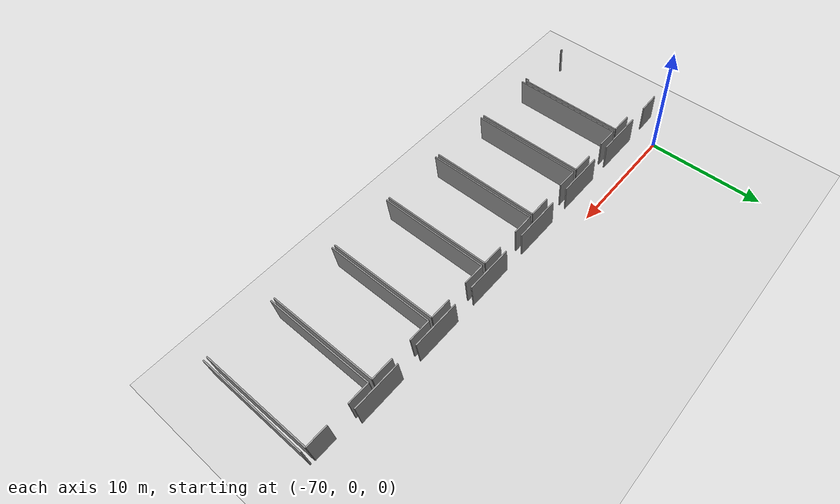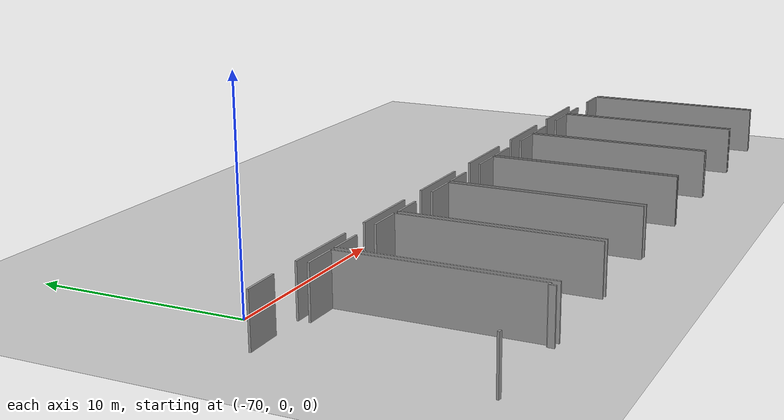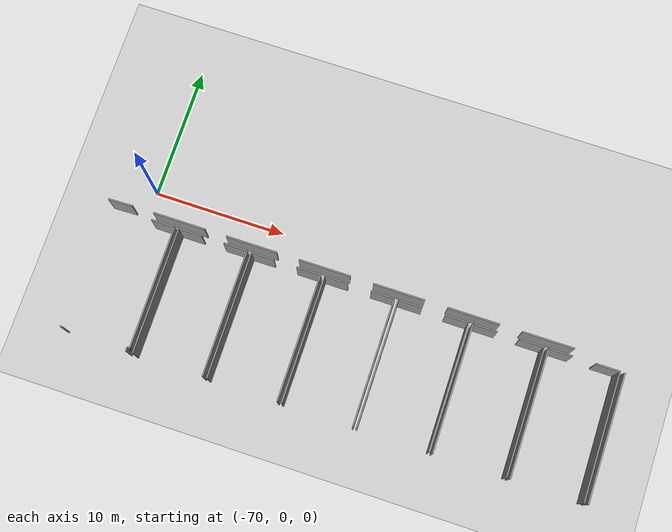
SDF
<sdf version="1.6">
 <world name="default">
  <model name="ground_plane">
   <static>1</static>
   <link name="link">
    <collision name="collision">
     <geometry><plane><normal>0 0 1</normal><size>100 100</size></plane></geometry>
     <surface><friction><ode><mu>100</mu><mu2>50</mu2></ode></friction></surface>
    </collision>
    <visual name="visual">
     <cast_shadows>0</cast_shadows>
     <geometry><plane><normal>0 0 1</normal><size>100 100</size></plane></geometry>
     <material>
      <script><uri>file://media/materials/scripts/gazebo.material</uri><name>Gazebo/Grey</name></script>
     </material>
    </visual>
   </link>
  </model>
  <model name="0510045906_A_40_1_104">
   <static>1</static>
   <link name="Wall_23">
    <collision name="Wall_23_Collision">
     <geometry><box><size>3.86427551182 0.1 2.5</size></box></geometry>
     <pose>1.93213775591 0 1.25 0 0 0</pose>
    </collision>
    <visual name="Wall_23_Visual">
     <pose>1.93213775591 0 1.25 0 0 0</pose>
     <geometry><box><size>3.86427551182 0.1 2.5</size></box></geometry>
     <material>
      <script><uri>file://media/materials/scripts/gazebo.material</uri><name>Gazebo/Grey</name></script>
      <ambient>1 1 1 1</ambient>
     </material>
    </visual>
    <pose>46.4005078559 -14.1445484844 0 0 0 3.14159265359</pose>
   </link>
   <link name="Wall_24">
    <collision name="Wall_24_Collision">
     <geometry><box><size>3.91252182193 0.1 2.5</size></box></geometry>
     <pose>1.95626091097 0 1.25 0 0 0</pose>
    </collision>
    <visual name="Wall_24_Visual">
     <pose>1.95626091097 0 1.25 0 0 0</pose>
     <geometry><box><size>3.91252182193 0.1 2.5</size></box></geometry>
     <material>
      <script><uri>file://media/materials/scripts/gazebo.material</uri><name>Gazebo/Grey</name></script>
      <ambient>1 1 1 1</ambient>
     </material>
    </visual>
    <pose>40.8564989684 -14.1445484844 0 0 0 3.14159265359</pose>
   </link>
   <link name="Wall_25">
    <collision name="Wall_25_Collision">
     <geometry><box><size>3.88306617997 0.1 2.5</size></box></geometry>
     <pose>1.94153308999 0 1.25 0 0 0</pose>
    </collision>
    <visual name="Wall_25_Visual">
     <pose>1.94153308999 0 1.25 0 0 0</pose>
     <geometry><box><size>3.88306617997 0.1 2.5</size></box></geometry>
     <material>
      <script><uri>file://media/materials/scripts/gazebo.material</uri><name>Gazebo/Grey</name></script>
      <ambient>1 1 1 1</ambient>
     </material>
    </visual>
    <pose>35.2469766704 -14.1445484844 0 0 0 3.14159265359</pose>
   </link>
   <link name="Wall_26">
    <collision name="Wall_26_Collision">
     <geometry><box><size>3.89906364069 0.1 2.5</size></box></geometry>
     <pose>1.94953182035 0 1.25 0 0 0</pose>
    </collision>
    <visual name="Wall_26_Visual">
     <pose>1.94953182035 0 1.25 0 0 0</pose>
     <geometry><box><size>3.89906364069 0.1 2.5</size></box></geometry>
     <material>
      <script><uri>file://media/materials/scripts/gazebo.material</uri><name>Gazebo/Grey</name></script>
      <ambient>1 1 1 1</ambient>
     </material>
    </visual>
    <pose>29.6072369465 -14.1445484844 0 0 0 3.14159265359</pose>
   </link>
   <link name="Wall_27">
    <collision name="Wall_27_Collision">
     <geometry><box><size>3.88636724329 0.1 2.5</size></box></geometry>
     <pose>1.94318362165 0 1.25 0 0 0</pose>
    </collision>
    <visual name="Wall_27_Visual">
     <pose>1.94318362165 0 1.25 0 0 0</pose>
     <geometry><box><size>3.88636724329 0.1 2.5</size></box></geometry>
     <material>
      <script><uri>file://media/materials/scripts/gazebo.material</uri><name>Gazebo/Grey</name></script>
      <ambient>1 1 1 1</ambient>
     </material>
    </visual>
    <pose>24.0165053166 -14.1445484844 0 0 0 3.14159265359</pose>
   </link>
   <link name="Wall_28">
    <collision name="Wall_28_Collision">
     <geometry><box><size>3.9780352325 0.1 2.5</size></box></geometry>
     <pose>1.98901761625 0 1.25 0 0 0</pose>
    </collision>
    <visual name="Wall_28_Visual">
     <pose>1.98901761625 0 1.25 0 0 0</pose>
     <geometry><box><size>3.9780352325 0.1 2.5</size></box></geometry>
     <material>
      <script><uri>file://media/materials/scripts/gazebo.material</uri><name>Gazebo/Grey</name></script>
      <ambient>1 1 1 1</ambient>
     </material>
    </visual>
    <pose>18.4836692588 -14.1445484844 0 0 0 3.14159265359</pose>
   </link>
   <link name="Wall_29">
    <collision name="Wall_29_Collision">
     <geometry><box><size>1.85124250872 0.1 2.5</size></box></geometry>
     <pose>0.92562125436 0 1.25 0 0 0</pose>
    </collision>
    <visual name="Wall_29_Visual">
     <pose>0.92562125436 0 1.25 0 0 0</pose>
     <geometry><box><size>1.85124250872 0.1 2.5</size></box></geometry>
     <material>
      <script><uri>file://media/materials/scripts/gazebo.material</uri><name>Gazebo/Grey</name></script>
      <ambient>1 1 1 1</ambient>
     </material>
    </visual>
    <pose>12.8642437708 -14.1445484844 0 0 0 -3.11580254427</pose>
   </link>
   <link name="Wall_62">
    <collision name="Wall_62_Collision">
     <geometry><box><size>1.7858752579 0.1 2.5</size></box></geometry>
     <pose>0.892937628948 0 1.25 0 0 0</pose>
    </collision>
    <visual name="Wall_62_Visual">
     <pose>0.892937628948 0 1.25 0 0 0</pose>
     <geometry><box><size>1.7858752579 0.1 2.5</size></box></geometry>
     <material>
      <script><uri>file://media/materials/scripts/gazebo.material</uri><name>Gazebo/Grey</name></script>
      <ambient>1 1 1 1</ambient>
     </material>
    </visual>
    <pose>14.5490557054 -14.678051103 0 0 0 0.0</pose>
   </link>
   <link name="Wall_63">
    <collision name="Wall_63_Collision">
     <geometry><box><size>9.33921599746 0.1 2.5</size></box></geometry>
     <pose>4.66960799873 0 1.25 0 0 0</pose>
    </collision>
    <visual name="Wall_63_Visual">
     <pose>4.66960799873 0 1.25 0 0 0</pose>
     <geometry><box><size>9.33921599746 0.1 2.5</size></box></geometry>
     <material>
      <script><uri>file://media/materials/scripts/gazebo.material</uri><name>Gazebo/Grey</name></script>
      <ambient>1 1 1 1</ambient>
     </material>
    </visual>
    <pose>16.3349309633 -14.678051103 0 0 0 -1.57079632679</pose>
   </link>
   <link name="Wall_64">
    <collision name="Wall_64_Collision">
     <geometry><box><size>0.196286303761 0.1 2.5</size></box></geometry>
     <pose>0.0981431518807 0 1.25 0 0 0</pose>
    </collision>
    <visual name="Wall_64_Visual">
     <pose>0.0981431518807 0 1.25 0 0 0</pose>
     <geometry><box><size>0.196286303761 0.1 2.5</size></box></geometry>
     <material>
      <script><uri>file://media/materials/scripts/gazebo.material</uri><name>Gazebo/Grey</name></script>
      <ambient>1 1 1 1</ambient>
     </material>
    </visual>
    <pose>16.3349309633 -24.0172671005 0 0 0 3.14159265359</pose>
   </link>
   <link name="Wall_65">
    <collision name="Wall_65_Collision">
     <geometry><box><size>0.290239644501 0.1 2.5</size></box></geometry>
     <pose>0.14511982225 0 1.25 0 0 0</pose>
    </collision>
    <visual name="Wall_65_Visual">
     <pose>0.14511982225 0 1.25 0 0 0</pose>
     <geometry><box><size>0.290239644501 0.1 2.5</size></box></geometry>
     <material>
      <script><uri>file://media/materials/scripts/gazebo.material</uri><name>Gazebo/Grey</name></script>
      <ambient>1 1 1 1</ambient>
     </material>
    </visual>
    <pose>16.1386446596 -24.0172671005 0 0 0 -1.57079632679</pose>
   </link>
   <link name="Wall_67">
    <collision name="Wall_67_Collision">
     <geometry><box><size>0.175589110417 0.1 2.5</size></box></geometry>
     <pose>0.0877945552086 0 1.25 0 0 0</pose>
    </collision>
    <visual name="Wall_67_Visual">
     <pose>0.0877945552086 0 1.25 0 0 0</pose>
     <geometry><box><size>0.175589110417 0.1 2.5</size></box></geometry>
     <material>
      <script><uri>file://media/materials/scripts/gazebo.material</uri><name>Gazebo/Grey</name></script>
      <ambient>1 1 1 1</ambient>
     </material>
    </visual>
    <pose>11.2236152992 -24.1107125853 0 0 0 2.967171774</pose>
   </link>
   <link name="Wall_68">
    <collision name="Wall_68_Collision">
     <geometry><box><size>9.62361529916 0.1 2.5</size></box></geometry>
     <pose>4.81180764958 0 1.25 0 0 0</pose>
    </collision>
    <visual name="Wall_68_Visual">
     <pose>4.81180764958 0 1.25 0 0 0</pose>
     <geometry><box><size>9.62361529916 0.1 2.5</size></box></geometry>
     <material>
      <script><uri>file://media/materials/scripts/gazebo.material</uri><name>Gazebo/Grey</name></script>
      <ambient>1 1 1 1</ambient>
     </material>
    </visual>
    <pose>16.653610538 -24.3110617362 0 0 0 1.57079632679</pose>
   </link>
   <link name="Wall_69">
    <collision name="Wall_69_Collision">
     <geometry><box><size>1.79527059197 0.1 2.5</size></box></geometry>
     <pose>0.897635295985 0 1.25 0 0 0</pose>
    </collision>
    <visual name="Wall_69_Visual">
     <pose>0.897635295985 0 1.25 0 0 0</pose>
     <geometry><box><size>1.79527059197 0.1 2.5</size></box></geometry>
     <material>
      <script><uri>file://media/materials/scripts/gazebo.material</uri><name>Gazebo/Grey</name></script>
      <ambient>1 1 1 1</ambient>
     </material>
    </visual>
    <pose>16.653610538 -14.6874464371 0 0 0 0.0</pose>
   </link>
   <link name="Wall_70">
    <collision name="Wall_70_Collision">
     <geometry><box><size>1.80415807015 0.1 2.5</size></box></geometry>
     <pose>0.902079035074 0 1.25 0 0 0</pose>
    </collision>
    <visual name="Wall_70_Visual">
     <pose>0.902079035074 0 1.25 0 0 0</pose>
     <geometry><box><size>1.80415807015 0.1 2.5</size></box></geometry>
     <material>
      <script><uri>file://media/materials/scripts/gazebo.material</uri><name>Gazebo/Grey</name></script>
      <ambient>1 1 1 1</ambient>
     </material>
    </visual>
    <pose>20.1207427392 -14.6874464371 0 0 0 0.0</pose>
   </link>
   <link name="Wall_71">
    <collision name="Wall_71_Collision">
     <geometry><box><size>9.61193461355 0.1 2.5</size></box></geometry>
     <pose>4.80596730678 0 1.25 0 0 0</pose>
    </collision>
    <visual name="Wall_71_Visual">
     <pose>4.80596730678 0 1.25 0 0 0</pose>
     <geometry><box><size>9.61193461355 0.1 2.5</size></box></geometry>
     <material>
      <script><uri>file://media/materials/scripts/gazebo.material</uri><name>Gazebo/Grey</name></script>
      <ambient>1 1 1 1</ambient>
     </material>
    </visual>
    <pose>21.9249008094 -14.6874464371 0 0 0 -1.57079632679</pose>
   </link>
   <link name="Wall_72">
    <collision name="Wall_72_Collision">
     <geometry><box><size>9.60837962228 0.1 2.5</size></box></geometry>
     <pose>4.80418981114 0 1.25 0 0 0</pose>
    </collision>
    <visual name="Wall_72_Visual">
     <pose>4.80418981114 0 1.25 0 0 0</pose>
     <geometry><box><size>9.60837962228 0.1 2.5</size></box></geometry>
     <material>
      <script><uri>file://media/materials/scripts/gazebo.material</uri><name>Gazebo/Grey</name></script>
      <ambient>1 1 1 1</ambient>
     </material>
    </visual>
    <pose>22.2598317727 -24.3212188542 0 0 0 1.57079632679</pose>
   </link>
   <link name="Wall_73">
    <collision name="Wall_73_Collision">
     <geometry><box><size>1.73128074909 0.1 2.5</size></box></geometry>
     <pose>0.865640374544 0 1.25 0 0 0</pose>
    </collision>
    <visual name="Wall_73_Visual">
     <pose>0.865640374544 0 1.25 0 0 0</pose>
     <geometry><box><size>1.73128074909 0.1 2.5</size></box></geometry>
     <material>
      <script><uri>file://media/materials/scripts/gazebo.material</uri><name>Gazebo/Grey</name></script>
      <ambient>1 1 1 1</ambient>
     </material>
    </visual>
    <pose>22.2598317727 -14.7128392319 0 0 0 0.0</pose>
   </link>
   <link name="Wall_74">
    <collision name="Wall_74_Collision">
     <geometry><box><size>1.81990160292 0.1 2.5</size></box></geometry>
     <pose>0.90995080146 0 1.25 0 0 0</pose>
    </collision>
    <visual name="Wall_74_Visual">
     <pose>0.90995080146 0 1.25 0 0 0</pose>
     <geometry><box><size>1.81990160292 0.1 2.5</size></box></geometry>
     <material>
      <script><uri>file://media/materials/scripts/gazebo.material</uri><name>Gazebo/Grey</name></script>
      <ambient>1 1 1 1</ambient>
     </material>
    </visual>
    <pose>25.7196000635 -14.7128392319 0 0 0 0.0</pose>
   </link>
   <link name="Wall_75">
    <collision name="Wall_75_Collision">
     <geometry><box><size>9.60840273742 0.1 2.5</size></box></geometry>
     <pose>4.80420136871 0 1.25 0 0 0</pose>
    </collision>
    <visual name="Wall_75_Visual">
     <pose>4.80420136871 0 1.25 0 0 0</pose>
     <geometry><box><size>9.60840273742 0.1 2.5</size></box></geometry>
     <material>
      <script><uri>file://media/materials/scripts/gazebo.material</uri><name>Gazebo/Grey</name></script>
      <ambient>1 1 1 1</ambient>
     </material>
    </visual>
    <pose>27.5395016664 -14.7128392319 0 0 0 -1.57298982733</pose>
   </link>
   <link name="Wall_76">
    <collision name="Wall_76_Collision">
     <geometry><box><size>9.63986668783 0.1 2.5</size></box></geometry>
     <pose>4.81993334391 0 1.25 0 0 0</pose>
    </collision>
    <visual name="Wall_76_Visual">
     <pose>4.81993334391 0 1.25 0 0 0</pose>
     <geometry><box><size>9.63986668783 0.1 2.5</size></box></geometry>
     <material>
      <script><uri>file://media/materials/scripts/gazebo.material</uri><name>Gazebo/Grey</name></script>
      <ambient>1 1 1 1</ambient>
     </material>
    </visual>
    <pose>27.8543723219 -24.3443262974 0 0 0 1.57079632679</pose>
   </link>
   <link name="Wall_77">
    <collision name="Wall_77_Collision">
     <geometry><box><size>1.77165529281 0.1 2.5</size></box></geometry>
     <pose>0.885827646405 0 1.25 0 0 0</pose>
    </collision>
    <visual name="Wall_77_Visual">
     <pose>0.885827646405 0 1.25 0 0 0</pose>
     <geometry><box><size>1.77165529281 0.1 2.5</size></box></geometry>
     <material>
      <script><uri>file://media/materials/scripts/gazebo.material</uri><name>Gazebo/Grey</name></script>
      <ambient>1 1 1 1</ambient>
     </material>
    </visual>
    <pose>27.8543723219 -14.7044596096 0 0 0 0.0</pose>
   </link>
   <link name="Wall_78">
    <collision name="Wall_78_Collision">
     <geometry><box><size>1.75210284082 0.1 2.5</size></box></geometry>
     <pose>0.876051420409 0 1.25 0 0 0</pose>
    </collision>
    <visual name="Wall_78_Visual">
     <pose>0.876051420409 0 1.25 0 0 0</pose>
     <geometry><box><size>1.75210284082 0.1 2.5</size></box></geometry>
     <material>
      <script><uri>file://media/materials/scripts/gazebo.material</uri><name>Gazebo/Grey</name></script>
      <ambient>1 1 1 1</ambient>
     </material>
    </visual>
    <pose>31.3616251389 -14.7044596096 0 0 0 0.0</pose>
   </link>
   <link name="Wall_79">
    <collision name="Wall_79_Collision">
     <geometry><box><size>9.63988550014 0.1 2.5</size></box></geometry>
     <pose>4.81994275007 0 1.25 0 0 0</pose>
    </collision>
    <visual name="Wall_79_Visual">
     <pose>4.81994275007 0 1.25 0 0 0</pose>
     <geometry><box><size>9.63988550014 0.1 2.5</size></box></geometry>
     <material>
      <script><uri>file://media/materials/scripts/gazebo.material</uri><name>Gazebo/Grey</name></script>
      <ambient>1 1 1 1</ambient>
     </material>
    </visual>
    <pose>33.1137279797 -14.7044596096 0 0 0 -1.56882072154</pose>
   </link>
   <link name="Wall_80">
    <collision name="Wall_80_Collision">
     <geometry><box><size>9.60964926202 0.1 2.5</size></box></geometry>
     <pose>4.80482463101 0 1.25 0 0 0</pose>
    </collision>
    <visual name="Wall_80_Visual">
     <pose>4.80482463101 0 1.25 0 0 0</pose>
     <geometry><box><size>9.60964926202 0.1 2.5</size></box></geometry>
     <material>
      <script><uri>file://media/materials/scripts/gazebo.material</uri><name>Gazebo/Grey</name></script>
      <ambient>1 1 1 1</ambient>
     </material>
    </visual>
    <pose>33.4093001111 -24.3252817013 0 0 0 1.57079632679</pose>
   </link>
   <link name="Wall_81">
    <collision name="Wall_81_Collision">
     <geometry><box><size>1.81787017934 0.1 2.5</size></box></geometry>
     <pose>0.908935089668 0 1.25 0 0 0</pose>
    </collision>
    <visual name="Wall_81_Visual">
     <pose>0.908935089668 0 1.25 0 0 0</pose>
     <geometry><box><size>1.81787017934 0.1 2.5</size></box></geometry>
     <material>
      <script><uri>file://media/materials/scripts/gazebo.material</uri><name>Gazebo/Grey</name></script>
      <ambient>1 1 1 1</ambient>
     </material>
    </visual>
    <pose>33.4093001111 -14.7156324393 0 0 0 0.0</pose>
   </link>
   <link name="Wall_82">
    <collision name="Wall_82_Collision">
     <geometry><box><size>1.7663228059 0.1 2.5</size></box></geometry>
     <pose>0.883161402952 0 1.25 0 0 0</pose>
    </collision>
    <visual name="Wall_82_Visual">
     <pose>0.883161402952 0 1.25 0 0 0</pose>
     <geometry><box><size>1.7663228059 0.1 2.5</size></box></geometry>
     <material>
      <script><uri>file://media/materials/scripts/gazebo.material</uri><name>Gazebo/Grey</name></script>
      <ambient>1 1 1 1</ambient>
     </material>
    </visual>
    <pose>36.9419457229 -14.7156324393 0 0 0 0.0</pose>
   </link>
   <link name="Wall_83">
    <collision name="Wall_83_Collision">
     <geometry><box><size>9.60967407505 0.1 2.5</size></box></geometry>
     <pose>4.80483703753 0 1.25 0 0 0</pose>
    </collision>
    <visual name="Wall_83_Visual">
     <pose>4.80483703753 0 1.25 0 0 0</pose>
     <geometry><box><size>9.60967407505 0.1 2.5</size></box></geometry>
     <material>
      <script><uri>file://media/materials/scripts/gazebo.material</uri><name>Gazebo/Grey</name></script>
      <ambient>1 1 1 1</ambient>
     </material>
    </visual>
    <pose>38.7082685288 -14.7156324393 0 0 0 -1.56852384365</pose>
   </link>
   <link name="Wall_84">
    <collision name="Wall_84_Collision">
     <geometry><box><size>9.62818600222 0.1 2.5</size></box></geometry>
     <pose>4.81409300111 0 1.25 0 0 0</pose>
    </collision>
    <visual name="Wall_84_Visual">
     <pose>4.81409300111 0 1.25 0 0 0</pose>
     <geometry><box><size>9.62818600222 0.1 2.5</size></box></geometry>
     <material>
      <script><uri>file://media/materials/scripts/gazebo.material</uri><name>Gazebo/Grey</name></script>
      <ambient>1 1 1 1</ambient>
     </material>
    </visual>
    <pose>39.0018092366 -24.3326456118 0 0 0 1.57079632679</pose>
   </link>
   <link name="Wall_85">
    <collision name="Wall_85_Collision">
     <geometry><box><size>1.83285192827 0.1 2.5</size></box></geometry>
     <pose>0.916425964133 0 1.25 0 0 0</pose>
    </collision>
    <visual name="Wall_85_Visual">
     <pose>0.916425964133 0 1.25 0 0 0</pose>
     <geometry><box><size>1.83285192827 0.1 2.5</size></box></geometry>
     <material>
      <script><uri>file://media/materials/scripts/gazebo.material</uri><name>Gazebo/Grey</name></script>
      <ambient>1 1 1 1</ambient>
     </material>
    </visual>
    <pose>39.0018092366 -14.7044596096 0 0 0 0.0</pose>
   </link>
   <link name="Wall_86">
    <collision name="Wall_86_Collision">
     <geometry><box><size>1.83310585621 0.1 2.5</size></box></geometry>
     <pose>0.916552928107 0 1.25 0 0 0</pose>
    </collision>
    <visual name="Wall_86_Visual">
     <pose>0.916552928107 0 1.25 0 0 0</pose>
     <geometry><box><size>1.83310585621 0.1 2.5</size></box></geometry>
     <material>
      <script><uri>file://media/materials/scripts/gazebo.material</uri><name>Gazebo/Grey</name></script>
      <ambient>1 1 1 1</ambient>
     </material>
    </visual>
    <pose>42.5034756388 -14.7044596096 0 0 0 0.0</pose>
   </link>
   <link name="Wall_87">
    <collision name="Wall_87_Collision">
     <geometry><box><size>9.62823502706 0.1 2.5</size></box></geometry>
     <pose>4.81411751353 0 1.25 0 0 0</pose>
    </collision>
    <visual name="Wall_87_Visual">
     <pose>4.81411751353 0 1.25 0 0 0</pose>
     <geometry><box><size>9.62823502706 0.1 2.5</size></box></geometry>
     <material>
      <script><uri>file://media/materials/scripts/gazebo.material</uri><name>Gazebo/Grey</name></script>
      <ambient>1 1 1 1</ambient>
     </material>
    </visual>
    <pose>44.336581495 -14.7044596096 0 0 0 -1.56760515689</pose>
   </link>
   <link name="Wall_88">
    <collision name="Wall_88_Collision">
     <geometry><box><size>9.61980637994 0.1 2.5</size></box></geometry>
     <pose>4.80990318997 0 1.25 0 0 0</pose>
    </collision>
    <visual name="Wall_88_Visual">
     <pose>4.80990318997 0 1.25 0 0 0</pose>
     <geometry><box><size>9.61980637994 0.1 2.5</size></box></geometry>
     <material>
      <script><uri>file://media/materials/scripts/gazebo.material</uri><name>Gazebo/Grey</name></script>
      <ambient>1 1 1 1</ambient>
     </material>
    </visual>
    <pose>44.6326614823 -24.3326456118 0 0 0 1.57079632679</pose>
   </link>
   <link name="Wall_89">
    <collision name="Wall_89_Collision">
     <geometry><box><size>1.77571813998 0.1 2.5</size></box></geometry>
     <pose>0.887859069989 0 1.25 0 0 0</pose>
    </collision>
    <visual name="Wall_89_Visual">
     <pose>0.887859069989 0 1.25 0 0 0</pose>
     <geometry><box><size>1.77571813998 0.1 2.5</size></box></geometry>
     <material>
      <script><uri>file://media/materials/scripts/gazebo.material</uri><name>Gazebo/Grey</name></script>
      <ambient>1 1 1 1</ambient>
     </material>
    </visual>
    <pose>44.6326614823 -14.7128392319 0 0 0 0.0</pose>
   </link>
   <link name="Wall_90">
    <collision name="Wall_90_Collision">
     <geometry><box><size>1.75311855261 0.1 2.5</size></box></geometry>
     <pose>0.876559276305 0 1.25 0 0 0</pose>
    </collision>
    <visual name="Wall_90_Visual">
     <pose>0.876559276305 0 1.25 0 0 0</pose>
     <geometry><box><size>1.75311855261 0.1 2.5</size></box></geometry>
     <material>
      <script><uri>file://media/materials/scripts/gazebo.material</uri><name>Gazebo/Grey</name></script>
      <ambient>1 1 1 1</ambient>
     </material>
    </visual>
    <pose>48.1424535788 -14.7128392319 0 0 0 0.0</pose>
   </link>
   <link name="Wall_91">
    <collision name="Wall_91_Collision">
     <geometry><box><size>9.62002259564 0.1 2.5</size></box></geometry>
     <pose>4.81001129782 0 1.25 0 0 0</pose>
    </collision>
    <visual name="Wall_91_Visual">
     <pose>4.81001129782 0 1.25 0 0 0</pose>
     <geometry><box><size>9.62002259564 0.1 2.5</size></box></geometry>
     <material>
      <script><uri>file://media/materials/scripts/gazebo.material</uri><name>Gazebo/Grey</name></script>
      <ambient>1 1 1 1</ambient>
     </material>
    </visual>
    <pose>49.8955721314 -14.7128392319 0 0 0 -1.56409174982</pose>
   </link>
   <link name="Wall_95">
    <collision name="Wall_95_Collision">
     <geometry><box><size>9.60736391049 0.1 2.5</size></box></geometry>
     <pose>4.80368195525 0 1.25 0 0 0</pose>
    </collision>
    <visual name="Wall_95_Visual">
     <pose>4.80368195525 0 1.25 0 0 0</pose>
     <geometry><box><size>9.60736391049 0.1 2.5</size></box></geometry>
     <material>
      <script><uri>file://media/materials/scripts/gazebo.material</uri><name>Gazebo/Grey</name></script>
      <ambient>1 1 1 1</ambient>
     </material>
    </visual>
    <pose>50.2556419616 -24.3158863672 0 0 0 1.57079632679</pose>
   </link>
   <pose>-83.7 12.1648944612 0 0 0 0</pose>
  </model>
 </world>
</sdf>
